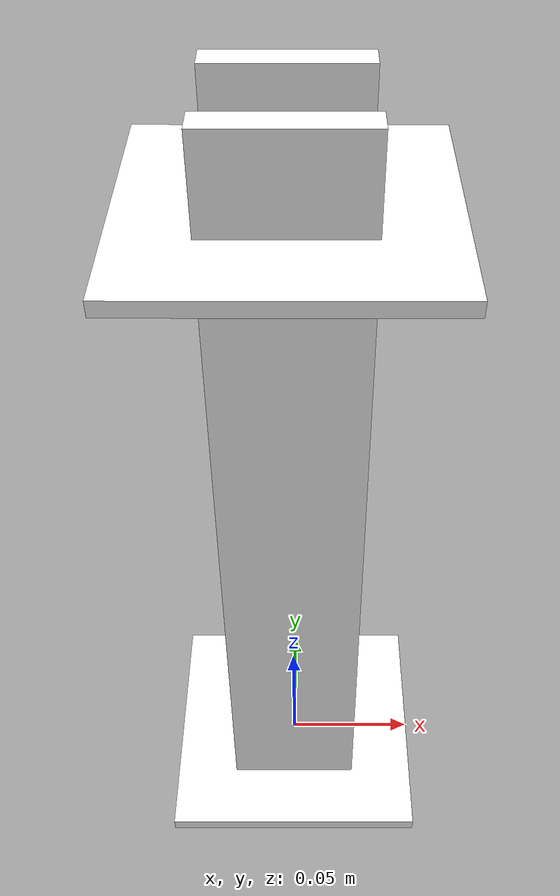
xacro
<?xml version="1.0"?>
<robot name="chargement_model"
	xmlns:xacro="http://ros.org/wiki/xacro">

	<xacro:property name="M_PI" value="3.1415926" />
	<xacro:property name="H_PI" value="1.5707963" />

    <link name="base_link">
        <visual>
                <geometry>
                    <box size="1e-6 1e-6 1e-6"/>
                </geometry>
            <origin xyz="0 0 0" rpy="0 0 0"/>
            <material name="white">
                <color rgba="1 1 1 1"/>
            </material>
        </visual>
        <collision>
            <geometry>
                    <box size="1e-6 1e-6 1e-6"/>
            </geometry>
        </collision>
        <inertial>
            <mass value="100"/>
            <inertia ixx="1.0" ixy="0.0" ixz="0.0" iyy="1.0" iyz="0.0" izz="1.0"/>
        </inertial>
    </link>

    <link name="charge_ment_link">
        <visual>
                <geometry>
                    <box size="0.1 0.1 0.005"/>
                </geometry>
            <origin xyz="0 0 0" rpy="0 0 0"/>
            <material name="white">
                <color rgba="1 1 1 1"/>
            </material>
        </visual>
        <collision>
            <geometry>
                    <box size="0.1 0.1 0.005"/>
            </geometry>
        </collision>
        <inertial>
            <mass value="2"/>
            <inertia ixx="1.0" ixy="0.0" ixz="0.0" iyy="1.0" iyz="0.0" izz="1.0"/>
        </inertial>
    </link>

    <joint name="charge_ment_link_to_base_link_joint" type="fixed">
        <parent link="base_link"/>
        <child link="charge_ment_link"/>
        <origin xyz="0 0 0" rpy="0 0 0"/>
    </joint>

    <link name="charge_major_link">
        <visual>
                <geometry>
                    <box size="0.05 0.05 0.25"/>
                </geometry>
            <origin xyz="0 0 0" rpy="0 0 0"/>
            <material name="white">
                <color rgba="1 1 1 1"/>
            </material>
        </visual>
        <collision>
            <geometry>
                    <box size="0.05 0.05 0.25"/>
            </geometry>
        </collision>
        <inertial>
            <mass value="2"/>
            <inertia ixx="1.0" ixy="0.0" ixz="0.0" iyy="1.0" iyz="0.0" izz="1.0"/>
        </inertial>
    </link>

    <joint name="charge_major_link_to_charge_ment_link_joint" type="fixed">
        <parent link="charge_ment_link"/>
        <child link="charge_major_link"/>
        <origin xyz="0 0 0.1275" rpy="0 0 0"/>
    </joint>

    <link name="charge_top_link">
        <visual>
                <geometry>
                    <box size="0.1 0.1 0.005"/>
                </geometry>
            <origin xyz="0 0 0" rpy="0 0 0"/>
            <material name="white">
                <color rgba="1 1 1 1"/>
            </material>
        </visual>
        <collision>
            <geometry>
                    <box size="0.1 0.1 0.005"/>
            </geometry>
        </collision>
        <inertial>
            <mass value="2"/>
            <inertia ixx="1.0" ixy="0.0" ixz="0.0" iyy="1.0" iyz="0.0" izz="1.0"/>
        </inertial>
    </link>

    <joint name="charge_top_link_to_charge_major_link_joint" type="fixed">
        <parent link="charge_major_link"/>
        <child link="charge_top_link"/>
        <origin xyz="0 0 0.1275" rpy="0 0 0"/>
    </joint>

    <link name="charge_top_left_baffe_link">
        <visual>
                <geometry>
                    <box size="0.05 0.01 0.03"/>
                </geometry>
            <origin xyz="0 0 0" rpy="0 0 0"/>
            <material name="white">
                <color rgba="1 1 1 1"/>
            </material>
        </visual>
        <collision>
            <geometry>
                    <box size="0.05 0.01 0.03"/>
            </geometry>
        </collision>
        <inertial>
            <mass value="2"/>
            <inertia ixx="1.0" ixy="0.0" ixz="0.0" iyy="1.0" iyz="0.0" izz="1.0"/>
        </inertial>
    </link>

    <joint name="charge_top_left_baffe_link_to_charge_top_link_joint" type="fixed">
        <parent link="charge_top_link"/>
        <child link="charge_top_left_baffe_link"/>
        <origin xyz="0 0.02 0.02" rpy="0 0 0"/>
    </joint>

    <link name="charge_top_right_baffe_link">
        <visual>
                <geometry>
                    <box size="0.05 0.01 0.03"/>
                </geometry>
            <origin xyz="0 0 0" rpy="0 0 0"/>
            <material name="white">
                <color rgba="1 1 1 1"/>
            </material>
        </visual>
        <collision>
            <geometry>
                    <box size="0.05 0.01 0.03"/>
            </geometry>
        </collision>
        <inertial>
            <mass value="2"/>
            <inertia ixx="1.0" ixy="0.0" ixz="0.0" iyy="1.0" iyz="0.0" izz="1.0"/>
        </inertial>
    </link>

    <joint name="charge_top_right_baffe_link_to_charge_top_link_joint" type="fixed">
        <parent link="charge_top_link"/>
        <child link="charge_top_right_baffe_link"/>
        <origin xyz="0 -0.02 0.02" rpy="0 0 0"/>
    </joint>

</robot>
